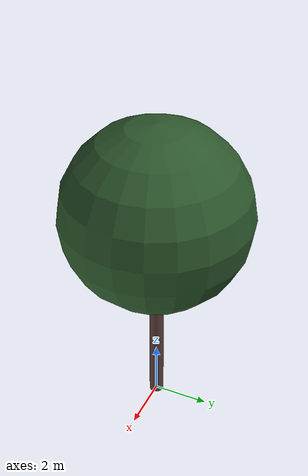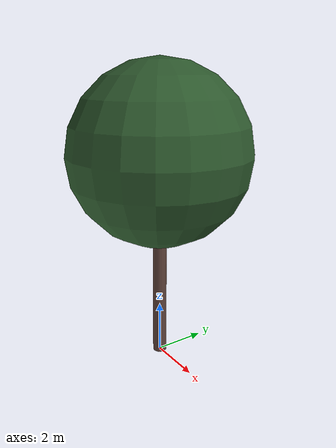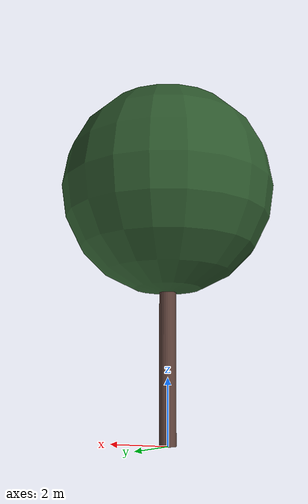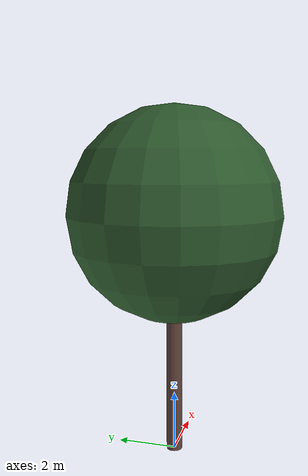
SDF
<?xml version="1.0" ?>
<sdf version="1.10">
  <model name="pin_parasol_04">
    <static>true</static>

    <!-- Tronc -->
    <link name="trunk">
      <pose>0 0 3.495007382832681 0 0 0</pose>
      <visual name="trunk_visual">
        <geometry>
          <cylinder>
            <radius>0.2608426543586015</radius>
            <length>6.990014765665362</length>
          </cylinder>
        </geometry>
        <material>
          <ambient>0.36 0.25 0.22 1</ambient>
          <diffuse>0.36 0.25 0.22 1</diffuse>
          <specular>0.1 0.1 0.1 1</specular>
        </material>
      </visual>
      <collision name="trunk_collision">
        <geometry>
          <cylinder>
            <radius>0.2608426543586015</radius>
            <length>6.990014765665362</length>
          </cylinder>
        </geometry>
      </collision>
    </link>

    <!-- Feuillage -->
    <link name="crown">
      <pose>0 0 8.020980922438847 0 0 0</pose>
      <visual name="crown_visual">
        <geometry>
          <sphere>
              <radius>3.436553855911617</radius>
            </sphere>
        </geometry>
        <material>
          <ambient>0.18 0.35 0.18 1</ambient>
          <diffuse>0.18 0.35 0.18 1</diffuse>
          <specular>0.1 0.1 0.1 1</specular>
        </material>
      </visual>
      <collision name="crown_collision">
        <geometry>
          <sphere>
            <radius>2.7492430847292937</radius>
          </sphere>
        </geometry>
      </collision>
    </link>

    <!-- Joint tronc-feuillage -->
    <joint name="trunk_crown_joint" type="fixed">
      <parent>trunk</parent>
      <child>crown</child>
    </joint>

  </model>
</sdf>
